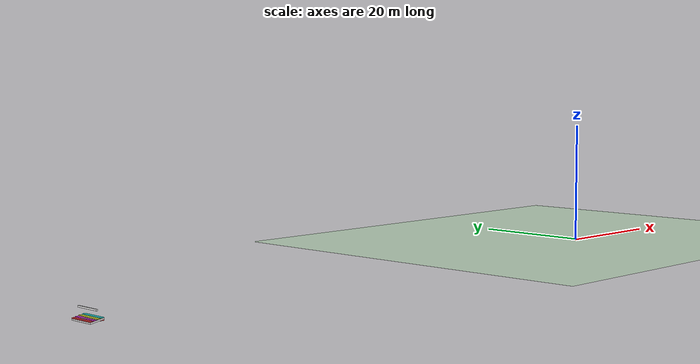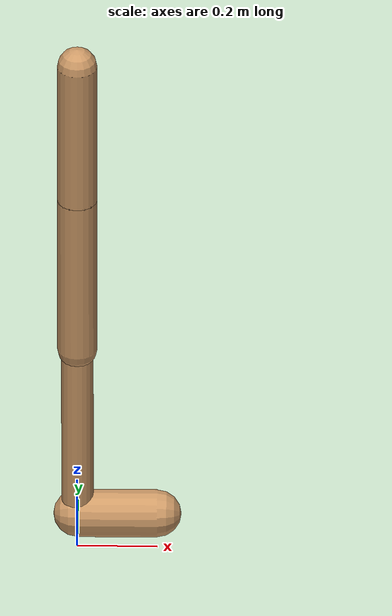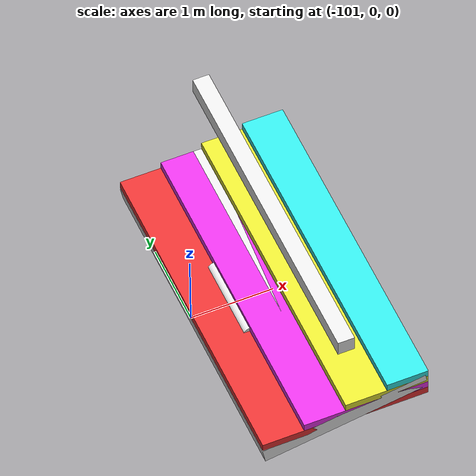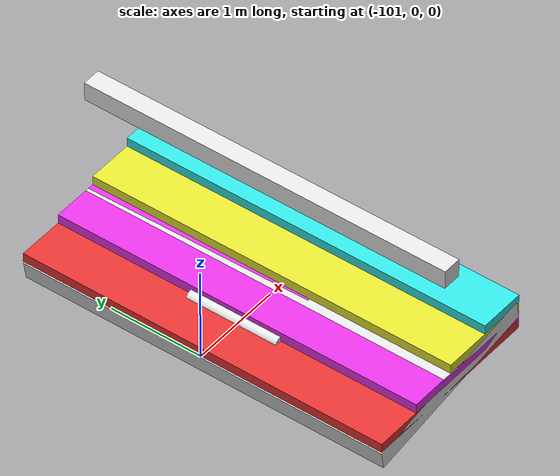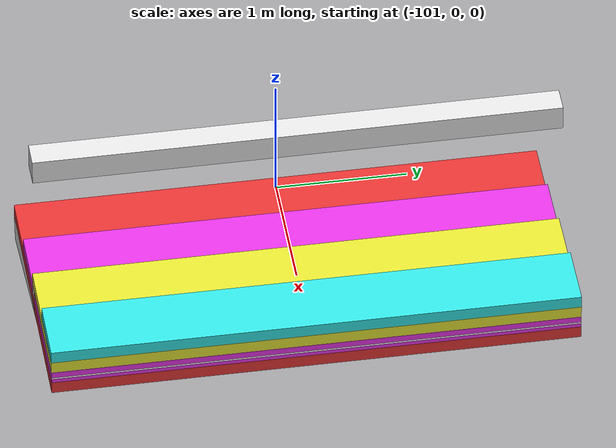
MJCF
<mujoco model="walker2d">
  <compiler angle="degree" coordinate="global" inertiafromgeom="true"/>
  <default>
    <joint armature="0.01" damping=".1" limited="true"/>
    <geom conaffinity="0" condim="3" contype="1" density="1000" friction=".7 .1 .1" rgba="0.8 0.6 .4 1"/>
  </default>
  <option integrator="RK4" timestep="0.002"/>
  <worldbody>
    <light cutoff="100" diffuse="1 1 1" dir="-0 0 -1.3" directional="true" exponent="1" pos="0 0 1.3" specular=".1 .1 .1"/>
    <geom conaffinity="1" condim="3" name="floor" pos="0 0 0" rgba="0.8 0.9 0.8 1" size="40 40 40" type="plane" material="MatPlane"/>
    <body name="torso" pos="0 0 1.25">
      <camera name="track" mode="trackcom" pos="0 -3 1" xyaxes="1 0 0 0 0 1"/>
      <joint armature="0" axis="1 0 0" damping="0" limited="false" name="rootx" pos="0 0 0" stiffness="0" type="slide"/>
      <joint armature="0" axis="0 0 1" damping="0" limited="false" name="rootz" pos="0 0 0" ref="1.25" stiffness="0" type="slide"/>
      <joint armature="0" axis="0 1 0" damping="0" limited="false" name="rooty" pos="0 0 1.25" stiffness="0" type="hinge"/>
      <geom friction="0.9" fromto="0 0 1.45 0 0 1.05" name="torso_geom" size="0.05" type="capsule"/>
      <body name="thigh" pos="0 0 1.05">
        <joint axis="0 -1 0" name="thigh_joint" pos="0 0 1.05" range="-150 0" type="hinge"/>
        <geom friction="0.9" fromto="0 0 1.05 0 0 0.6" name="thigh_geom" size="0.05" type="capsule"/>
        <body name="leg" pos="0 0 0.35">
          <joint axis="0 -1 0" name="leg_joint" pos="0 0 0.6" range="-150 0" type="hinge"/>
          <geom friction="0.9" fromto="0 0 0.6 0 0 0.1" name="leg_geom" size="0.04" type="capsule"/>
          <body name="foot" pos="0.2 0 0">
            <joint axis="0 -1 0" name="foot_joint" pos="0 0 0.1" range="-45 45" type="hinge"/>
            <geom friction="0.9" fromto="-0.0 0 0.1 0.2 0 0.1" name="foot_geom" size="0.06" type="capsule"/>
          </body>
        </body>
      </body>
      <!-- copied and then replace thigh->thigh_left, leg->leg_left, foot->foot_right -->
      <body name="thigh_left" pos="0 0 1.05">
        <joint axis="0 -1 0" name="thigh_left_joint" pos="0 0 1.05" range="-150 0" type="hinge"/>
        <geom friction="0.9" fromto="0 0 1.05 0 0 0.6" name="thigh_left_geom" rgba=".7 .3 .6 1" size="0.05" type="capsule"/>
        <body name="leg_left" pos="0 0 0.35">
          <joint axis="0 -1 0" name="leg_left_joint" pos="0 0 0.6" range="-150 0" type="hinge"/>
          <geom friction="0.9" fromto="0 0 0.6 0 0 0.1" name="leg_left_geom" rgba=".7 .3 .6 1" size="0.04" type="capsule"/>
          <body name="foot_left" pos="0.2 0 0">
            <joint axis="0 -1 0" name="foot_left_joint" pos="0 0 0.1" range="-45 45" type="hinge"/>
            <geom friction="1.9" fromto="-0.0 0 0.1 0.2 0 0.1" name="foot_left_geom" rgba=".7 .3 .6 1" size="0.06" type="capsule"/>
          </body>
        </body>
      </body>
    </body>

    <body name="obstacle0" pos="0 0 0.0">   <!-- z centré pour toucher le sol -->
      <geom name="obstacle0-geom" pos="-100 0 0.06" mass="0"
            type="box" size="1 2.0 0.1"
            rgba="0.9 0.9 0.9 1"
            contype="1" conaffinity="1"
            quat="0.9962 0 -0.0872 0"/>           <!-- 20° = 0.349066 rad -->
    </body>

    <body name="obstacle1-a" pos="0 0 0.05">
      <geom name="obstacle1-a_geom" pos="-100.5 0 0.075" mass="0.0"
            type="cylinder" size="0.075 0.5"
            rgba="0.9 0.9 0.9 1"
            contype="1" conaffinity="1"
            quat="0.7071 0.7071 0 0"/> <!-- rotation 90° autour de X -->
    </body>
    <body name="obstacle1-b" pos="0 0 0.05">
      <geom name="obstacle1-b_geom" pos="-100.3 0 0.075" mass="0.0"
            type="cylinder" size="0.075 0.5"
            rgba="0.9 0.9 0.9 1"
            contype="1" conaffinity="1"
            quat="0.7071 0.7071 0 0"/> <!-- rotation 90° autour de X -->
    </body>
    <body name="obstacle1-c" pos="0 0 0.05">
      <geom name="obstacle1-c_geom" pos="-100.1 0 0.075" mass="0.0"
            type="cylinder" size="0.075 0.5"
            rgba="0.9 0.9 0.9 1"
            contype="1" conaffinity="1"
            quat="0.7071 0.7071 0 0"/> <!-- rotation 90° autour de X -->
    </body>
    <body name="obstacle1-d" pos="0 0 0.05">
      <geom name="obstacle1-d_geom" pos="-99.9 0 0.075" mass="0.0"
            type="cylinder" size="0.075 0.5"
            rgba="0.9 0.9 0.9 1"
            contype="1" conaffinity="1"
            quat="0.7071 0.7071 0 0"/> <!-- rotation 90° autour de X -->
    </body>
    <body name="obstacle1-e" pos="0 0 0.05">
      <geom name="obstacle1-e_geom" pos="-99.7 0 0.075" mass="0.0"
            type="cylinder" size="0.075 0.5"
            rgba="0.9 0.9 0.9 1"
            contype="1" conaffinity="1"
            quat="0.7071 0.7071 0 0"/> <!-- rotation 90° autour de X -->
    </body>
    <body name="obstacle1-f" pos="0 0 0.05">
      <geom name="obstacle1-f_geom" pos="-99.5 0 0.075" mass="0.0"
            type="cylinder" size="0.075 0.5"
            rgba="0.9 0.9 0.9 1"
            contype="1" conaffinity="1"
            quat="0.7071 0.7071 0 0"/> <!-- rotation 90° autour de X -->
    </body>

    <body name="obstacle2-a" pos="0 0 0.0">   <!-- z centré pour toucher le sol -->
      <geom name="obstacle2-a-geom" pos="-100 0 0.05" mass="0"
            type="box" size="1 2.0 0.05"
            rgba="0.9 0.2 0.2 1"
            contype="1" conaffinity="1"/>           <!-- 20° = 0.349066 rad -->
    </body>
    <body name="obstacle2-b" pos="0 0 0.0">   <!-- z centré pour toucher le sol -->
      <geom name="obstacle2-b-geom" pos="-99.75 0 0.15" mass="0"
            type="box" size="0.75 2.0 0.05"
            rgba="0.9 0.2 0.9 1"
            contype="1" conaffinity="1"/>           <!-- 20° = 0.349066 rad -->
    </body>
    <body name="obstacle2-c" pos="0 0 0.0">   <!-- z centré pour toucher le sol -->
      <geom name="obstacle2-c-geom" pos="-99.5 0 0.25" mass="0"
            type="box" size="0.5 2.0 0.05"
            rgba="0.9 0.9 0.2 1"
            contype="1" conaffinity="1"/>           <!-- 20° = 0.349066 rad -->
    </body>
    <body name="obstacle2-d" pos="0 0 0.0">   <!-- z centré pour toucher le sol -->
      <geom name="obstacle2-d-geom" pos="-99.25 0 0.35" mass="0"
            type="box" size="0.25 2.0 0.05"
            rgba="0.2 0.9 0.9 1"
            contype="1" conaffinity="1"/>           <!-- 20° = 0.349066 rad -->
    </body>

    <body name="obstacle3" pos="0 0 0">
      <geom name="obstacle3_geom" pos="-100 0 0.1" mass = "0.0"
            type="box" size="0.1 2 0.1"
            rgba="0.9 0.9 0.9 1"
            contype="1" conaffinity="1"/>
    </body>

    <body name="obstacle4" pos="0 0 0">
      <geom name="obstacle4_geom" pos="-100 0 1.4" mass = "0.0"
            type="box" size="0.1 2 0.1"
            rgba="0.9 0.9 0.9 1"
            contype="1" conaffinity="1"/>
    </body>

  </worldbody>
  <actuator>
    <motor ctrllimited="true" ctrlrange="-1.0 1.0" gear="100" joint="thigh_joint"/>
    <motor ctrllimited="true" ctrlrange="-1.0 1.0" gear="100" joint="leg_joint"/>
    <motor ctrllimited="true" ctrlrange="-1.0 1.0" gear="100" joint="foot_joint"/>
    <motor ctrllimited="true" ctrlrange="-1.0 1.0" gear="100" joint="thigh_left_joint"/>
    <motor ctrllimited="true" ctrlrange="-1.0 1.0" gear="100" joint="leg_left_joint"/>
    <motor ctrllimited="true" ctrlrange="-1.0 1.0" gear="100" joint="foot_left_joint"/>
  </actuator>
    <asset>
        <texture type="skybox" builtin="gradient" rgb1=".4 .5 .6" rgb2="0 0 0"
            width="100" height="100"/>
        <texture builtin="flat" height="1278" mark="cross" markrgb="1 1 1" name="texgeom" random="0.01" rgb1="0.8 0.6 0.4" rgb2="0.8 0.6 0.4" type="cube" width="127"/>
        <texture builtin="checker" height="100" name="texplane" rgb1="0 0 0" rgb2="0.8 0.8 0.8" type="2d" width="100"/>
        <material name="MatPlane" reflectance="0.5" shininess="1" specular="1" texrepeat="60 60" texture="texplane"/>
        <material name="geom" texture="texgeom" texuniform="true"/>
    </asset>
</mujoco>
